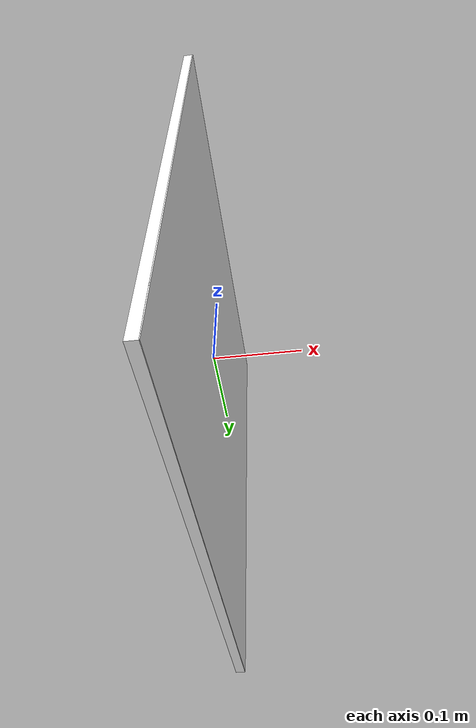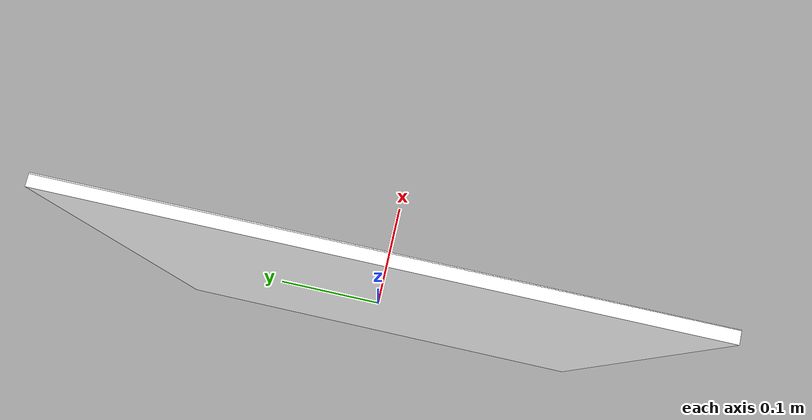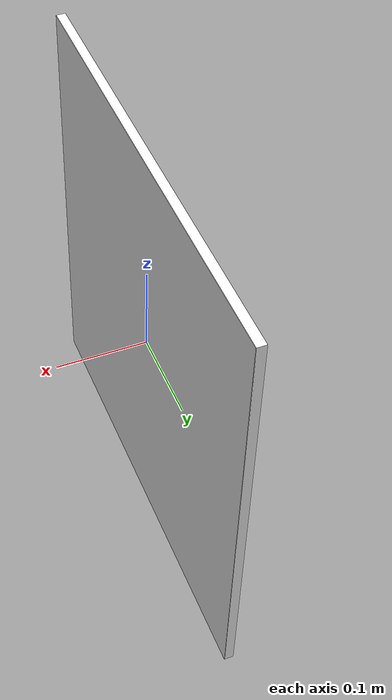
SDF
<?xml version="1.0" ?>
<sdf version="1.9">
  <model name="aruco_marker_0">
    <static>true</static>
    <link name="link">
      <visual name="front_face">
        <pose>0.005 0 0 0 0 0</pose>
        <geometry>
          <box><size>0.001 0.5 0.5</size></box>
        </geometry>
        <material>
          <diffuse>1 1 1 1</diffuse>
          <pbr>
            <metal>
              <albedo_map>model://aruco_marker_0/materials/textures/marker_0.png</albedo_map>
              <metalness>0.0</metalness>
              <roughness>1.0</roughness>
            </metal>
          </pbr>
        </material>
      </visual>
      <visual name="backing">
        <geometry>
          <box><size>0.01 0.5 0.5</size></box>
        </geometry>
        <material>
          <diffuse>1 1 1 1</diffuse>
        </material>
      </visual>
      <collision name="collision">
        <geometry>
          <box><size>0.01 0.5 0.5</size></box>
        </geometry>
      </collision>
    </link>
  </model>
</sdf>
